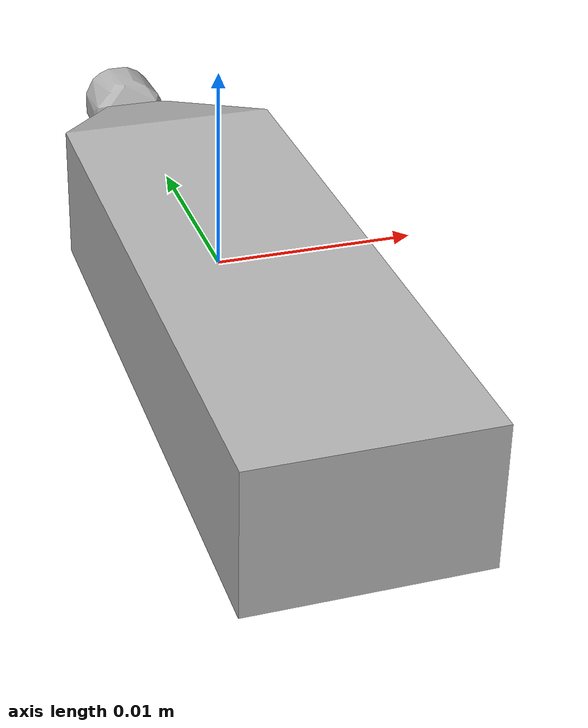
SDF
<?xml version="1.0" ?>
<sdf version="1.5">
  <model name="cube_20k">
    <link name="link">
      <pose>0 0 0 0 0 0</pose>
      <collision name="collision">
        <geometry>
          <mesh>
            <uri>model:///assets/boxnet_sdf/category_1/obj_2/mesh.stl</uri>
            <scale>0.025 0.05 0.025</scale>
          </mesh>
        </geometry>
      </collision>
      <visual name="visual">
        <geometry>
          <mesh>
            <uri>model:///assets/boxnet_sdf/category_1/obj_2/mesh.stl</uri>
            <scale>0.025 0.05 0.025</scale>
          </mesh>
        </geometry>
      </visual>
    </link>
  </model>
</sdf>
